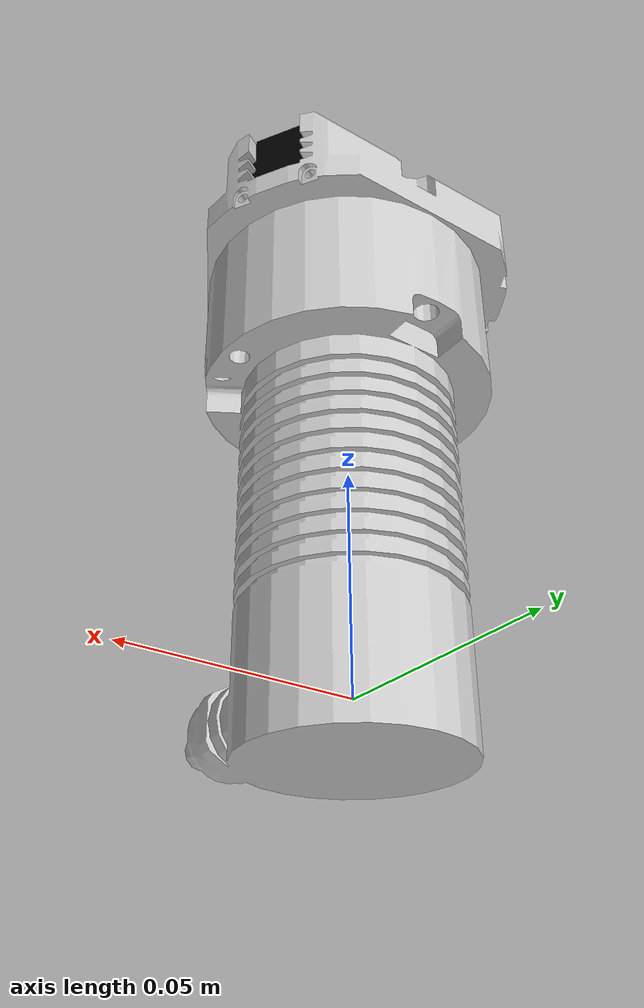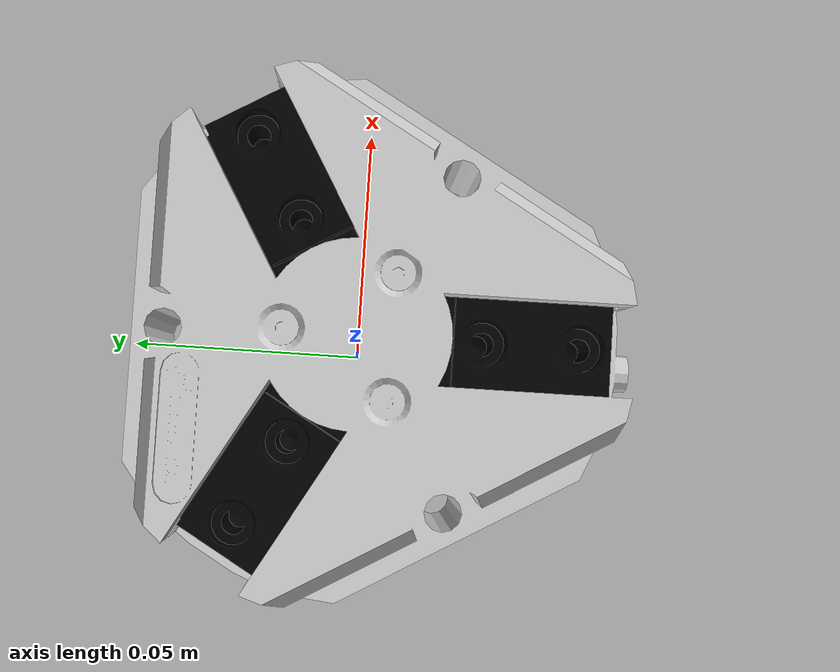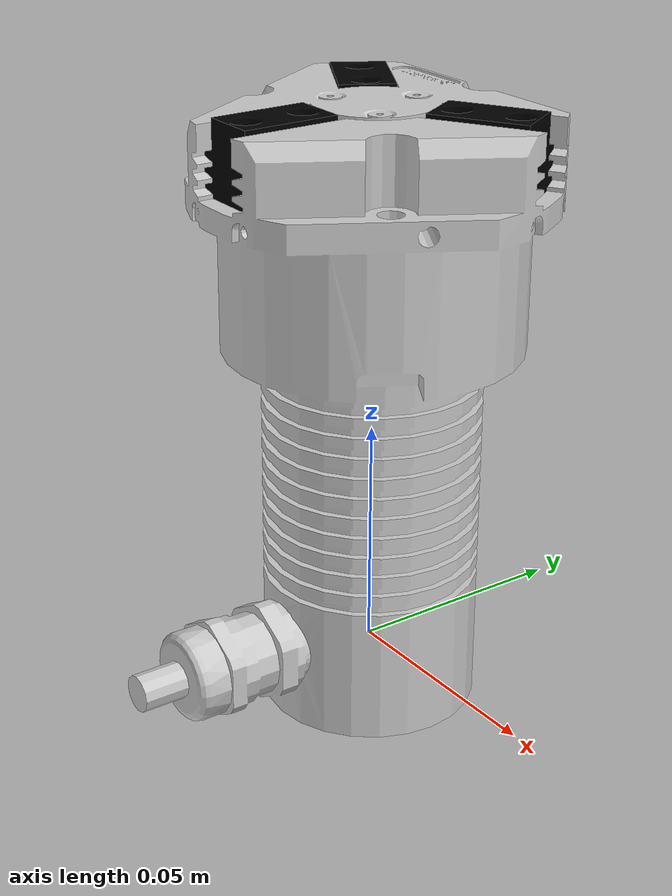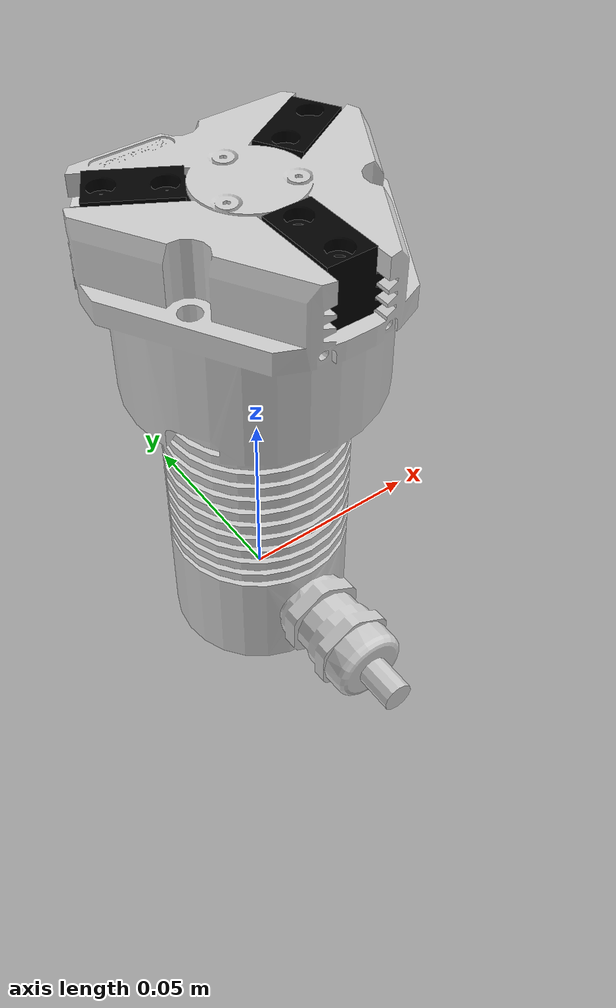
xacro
<?xml version="1.0"?>
<robot xmlns:xacro="http://www.ros.org/wiki/xacro"
  name="schunk_ezn64">
  <xacro:include filename="$(find schunk_ezn64)/urdf/ezn64.urdf.xacro"/>

  <link name="base_link" />

  <xacro:schunk_ezn64 name="schunk_ezn64" parent="base_link" >
    <origin xyz="0 0 0.12" rpy="0 -1.57 0" />
  </xacro:schunk_ezn64>

 </robot>

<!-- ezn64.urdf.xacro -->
<robot xmlns:xacro="http://www.ros.org/wiki/xacro">

    <xacro:macro name="schunk_ezn64" params="parent name *origin ">

<!--       PALM -->

      <joint name="${name}_base_joint" type="fixed" >
	<parent link="${parent}" />
	<child link="${name}_base_link" />
	<xacro:insert_block name="origin" />
      </joint>

      <link name="${name}_base_link">
	  <visual>
             <geometry>
                <mesh filename="package://schunk_ezn64/meshes/ezn64_base_link.STL" />
             </geometry>
             <material name="silver">
                <color rgba="0.8 0.8 0.8 1"/>
             </material>
	  </visual>
	  <collision>
            <geometry>
               <mesh filename="package://schunk_ezn64/meshes/ezn64_base_link.STL" />
	    </geometry>
	    <material name="black">
	      <color rgba="0 0 0 1" />
	    </material>
	  </collision>
      </link>

<!--       FINGER 1 -->

      <joint name="${name}_finger_1_joint" type="prismatic" >
	<parent link="${name}_base_link" />
	<child link="${name}_finger_1_link" />
	<limit effort="0" lower="0" upper="0.006" velocity="0"/>
	<origin xyz="-0.01501 -0.0086667 0" rpy="-1.5708 0 0" />
	<axis xyz="0 0 -1" />
      </joint>

       <link name="${name}_finger_1_link">
	<visual>
	  <geometry>
	    <mesh filename="package://schunk_ezn64/meshes/ezn64_finger_1.STL" />
	  </geometry>
	    <material name="black"/>
	</visual>
	<collision>
	  <geometry>
	    <mesh filename="package://schunk_ezn64/meshes/ezn64_finger_1.STL" />
	  </geometry>
	    <material name="black" />
	</collision>
      </link>

<!--       FINGER 2 -->

      <joint name="${name}_finger_2_joint" type="prismatic" >
	<mimic joint="${name}_finger_1_joint" multiplier="1" offset="0"/>
	<parent link="${name}_base_link" />
	<child link="${name}_finger_2_link" />
	<limit effort="0" lower="0" upper="0.006" velocity="0"/>
	<origin xyz="-0.01501 0.0043333 0.0075056" rpy="1.0472 0 0" />
	<axis xyz="0 1 0" />
      </joint>

       <link name="${name}_finger_2_link">
	<visual>
	  <geometry>
	    <mesh filename="package://schunk_ezn64/meshes/ezn64_finger_2.STL" />
	  </geometry>
	    <material name="black"/>
	</visual>
	<collision>
	  <geometry>
	    <mesh filename="package://schunk_ezn64/meshes/ezn64_finger_2.STL" />
	  </geometry>
	    <material name="black" />
	</collision>
      </link>

<!--       FINGER 3 -->

      <joint name="${name}_finger_3_joint" type="prismatic" >
	<mimic joint="${name}_finger_1_joint" multiplier="1" offset="0"/>
	<parent link="${name}_base_link" />
	<child link="${name}_finger_3_link" />
	<limit effort="0" lower="0" upper="0.006" velocity="0"/>
	<origin xyz="-0.01501 0.0043333 -0.0075056" rpy="-2.618 0 0" />
	<axis xyz="0 0 1" />
      </joint>

       <link name="${name}_finger_3_link">
	<visual>
	  <geometry>
	    <mesh filename="package://schunk_ezn64/meshes/ezn64_finger_3.STL" />
	  </geometry>
	    <material name="black"/>
	</visual>
	<collision>
	  <geometry>
	    <mesh filename="package://schunk_ezn64/meshes/ezn64_finger_3.STL" />
	  </geometry>
	    <material name="black" />
	</collision>
      </link>

      </xacro:macro>
 </robot>
